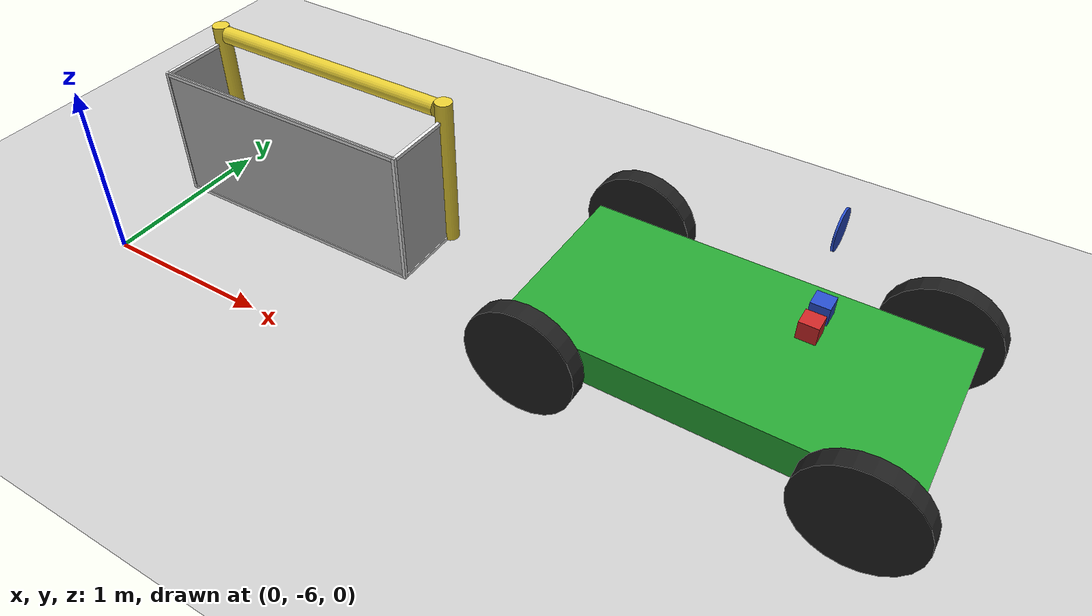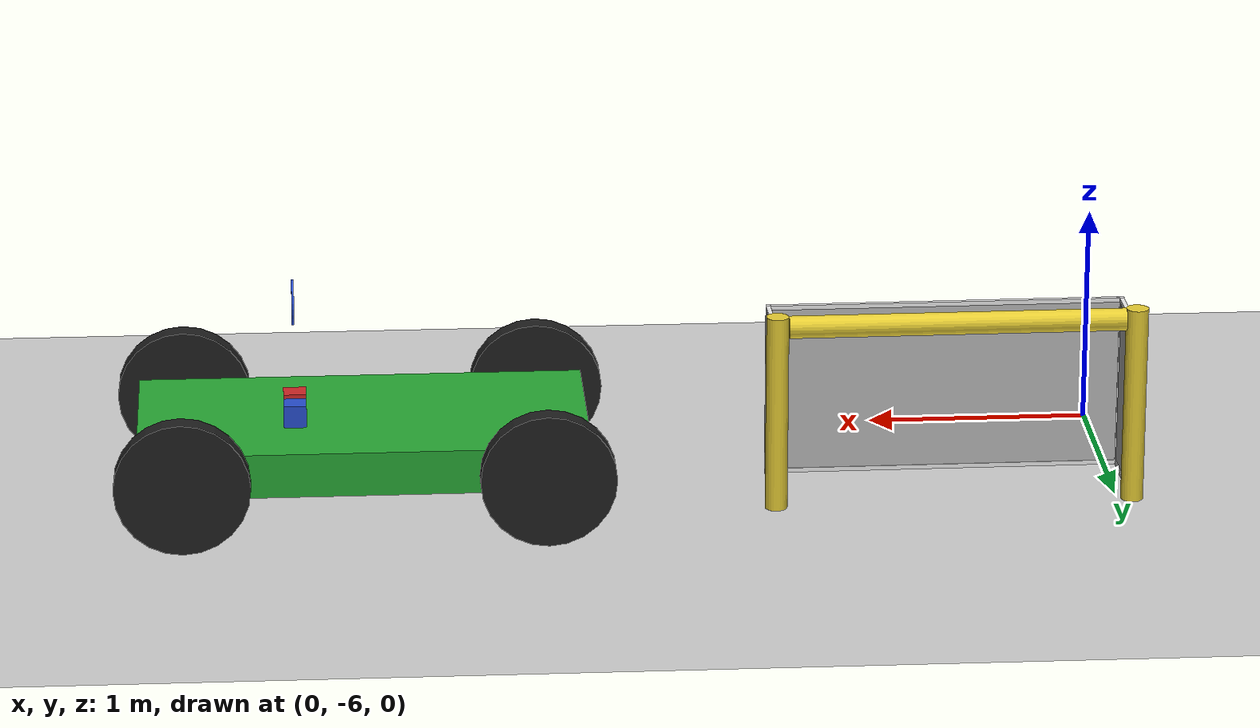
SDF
<sdf version="1.6">
 <world name="default">
  <model name="ground_plane">
   <static>1</static>
   <link name="link">
    <collision name="collision">
     <geometry><plane><normal>0 0 1</normal><size>100 100</size></plane></geometry>
     <surface>
      <contact><collide_bitmask>65535</collide_bitmask></contact>
      <friction><ode><mu>100</mu><mu2>50</mu2></ode></friction>
     </surface>
    </collision>
    <visual name="visual">
     <cast_shadows>0</cast_shadows>
     <geometry><plane><normal>0 0 1</normal><size>100 100</size></plane></geometry>
     <material>
      <script><uri>file://media/materials/scripts/gazebo.material</uri><name>Gazebo/Grey</name></script>
     </material>
    </visual>
   </link>
  </model>
  <model name="RoboCup 2014 SPL Goal">
   <static>1</static>
   <link name="left_post">
    <pose>0 0.8 0.45 0 -0 0</pose>
    <collision name="collision">
     <geometry><cylinder><radius>0.05</radius><length>0.9</length></cylinder></geometry>
    </collision>
    <visual name="visual">
     <geometry><cylinder><radius>0.05</radius><length>0.9</length></cylinder></geometry>
     <material>
      <script><uri>file://media/materials/scripts/gazebo.material</uri><name>Gazebo/ZincYellow</name></script>
     </material>
    </visual>
   </link>
   <link name="left_support_horiz_lower">
    <pose>0.24 0.8 0.01 0 -0 0</pose>
    <collision name="collision"><geometry><box><size>0.38 0.02 0.02</size></box></geometry></collision>
    <visual name="visual">
     <geometry><box><size>0.38 0.02 0.02</size></box></geometry>
     <material>
      <script><uri>file://media/materials/scripts/gazebo.material</uri><name>Gazebo/White</name></script>
     </material>
    </visual>
   </link>
   <link name="left_support_horiz_upper">
    <pose>0.24 0.8 0.79 0 -0 0</pose>
    <collision name="collision"><geometry><box><size>0.38 0.02 0.02</size></box></geometry></collision>
    <visual name="visual">
     <geometry><box><size>0.38 0.02 0.02</size></box></geometry>
     <material>
      <script><uri>file://media/materials/scripts/gazebo.material</uri><name>Gazebo/White</name></script>
     </material>
    </visual>
   </link>
   <link name="left_support_vertical">
    <pose>0.44 0.8 0.4 3.14159 1.57079 3.14159</pose>
    <collision name="collision"><geometry><box><size>0.8 0.02 0.02</size></box></geometry></collision>
    <visual name="visual">
     <geometry><box><size>0.8 0.02 0.02</size></box></geometry>
     <material>
      <script><uri>file://media/materials/scripts/gazebo.material</uri><name>Gazebo/White</name></script>
     </material>
    </visual>
   </link>
   <link name="right_support_horiz_lower">
    <pose>0.24 -0.8 0.01 0 -0 0</pose>
    <collision name="collision"><geometry><box><size>0.38 0.02 0.02</size></box></geometry></collision>
    <visual name="visual">
     <geometry><box><size>0.38 0.02 0.02</size></box></geometry>
     <material>
      <script><uri>file://media/materials/scripts/gazebo.material</uri><name>Gazebo/White</name></script>
     </material>
    </visual>
   </link>
   <link name="right_support_horiz_upper">
    <pose>0.24 -0.8 0.79 0 -0 0</pose>
    <collision name="collision"><geometry><box><size>0.38 0.02 0.02</size></box></geometry></collision>
    <visual name="visual">
     <geometry><box><size>0.38 0.02 0.02</size></box></geometry>
     <material>
      <script><uri>file://media/materials/scripts/gazebo.material</uri><name>Gazebo/White</name></script>
     </material>
    </visual>
   </link>
   <link name="right_support_vertical">
    <pose>0.44 -0.8 0.4 3.14159 1.57079 3.14159</pose>
    <collision name="collision"><geometry><box><size>0.8 0.02 0.02</size></box></geometry></collision>
    <visual name="visual">
     <geometry><box><size>0.8 0.02 0.02</size></box></geometry>
     <material>
      <script><uri>file://media/materials/scripts/gazebo.material</uri><name>Gazebo/White</name></script>
     </material>
    </visual>
   </link>
   <link name="center_support_horiz_lower">
    <pose>0.44 0 0.01 3.14159 1.57079 3.14159</pose>
    <collision name="collision"><geometry><box><size>0.02 1.58 0.02</size></box></geometry></collision>
    <visual name="visual">
     <geometry><box><size>0.02 1.58 0.02</size></box></geometry>
     <material>
      <script><uri>file://media/materials/scripts/gazebo.material</uri><name>Gazebo/White</name></script>
     </material>
    </visual>
   </link>
   <link name="center_support_horiz_upper">
    <pose>0.44 0 0.79 3.14159 1.57079 3.14159</pose>
    <collision name="collision"><geometry><box><size>0.02 1.58 0.02</size></box></geometry></collision>
    <visual name="visual">
     <geometry><box><size>0.02 1.58 0.02</size></box></geometry>
     <material>
      <script><uri>file://media/materials/scripts/gazebo.material</uri><name>Gazebo/White</name></script>
     </material>
    </visual>
   </link>
   <link name="right_post">
    <pose>0 -0.8 0.45 0 -0 0</pose>
    <collision name="collision">
     <geometry><cylinder><radius>0.05</radius><length>0.9</length></cylinder></geometry>
    </collision>
    <visual name="visual">
     <geometry><cylinder><radius>0.05</radius><length>0.9</length></cylinder></geometry>
     <material>
      <script><uri>file://media/materials/scripts/gazebo.material</uri><name>Gazebo/ZincYellow</name></script>
     </material>
    </visual>
   </link>
   <link name="crossbar">
    <pose>0 0 0.85 1.57 1.57 0</pose>
    <collision name="collision">
     <geometry><cylinder><radius>0.05</radius><length>1.5</length></cylinder></geometry>
    </collision>
    <visual name="visual">
     <geometry><cylinder><radius>0.05</radius><length>1.5</length></cylinder></geometry>
     <material>
      <script><uri>file://media/materials/scripts/gazebo.material</uri><name>Gazebo/ZincYellow</name></script>
     </material>
    </visual>
   </link>
   <link name="center_net">
    <pose>0.44 0 0.4 0 -0 0</pose>
    <collision name="collision"><geometry><box><size>0.01 1.6 0.8</size></box></geometry></collision>
    <visual name="visual">
     <geometry><box><size>0.01 1.6 0.8</size></box></geometry>
     <material>
      <script>
       <uri>model://robocup09_spl_field/materials/scripts/</uri>
       <uri>model://robocup09_spl_field/materials/textures/</uri>
       <name>RoboCup/Net</name>
      </script>
     </material>
    </visual>
   </link>
   <link name="left_net">
    <pose>0.24 0.8 0.4 0 -0 0</pose>
    <collision name="collision"><geometry><box><size>0.38 0.01 0.76</size></box></geometry></collision>
    <visual name="visual">
     <geometry><box><size>0.38 0.01 0.76</size></box></geometry>
     <material>
      <script>
       <uri>model://robocup09_spl_field/materials/scripts/</uri>
       <uri>model://robocup09_spl_field/materials/textures/</uri>
       <name>RoboCup/Net</name>
      </script>
     </material>
    </visual>
   </link>
   <link name="right_net">
    <pose>0.24 -0.8 0.4 0 -0 0</pose>
    <collision name="collision"><geometry><box><size>0.38 0.01 0.76</size></box></geometry></collision>
    <visual name="visual">
     <geometry><box><size>0.38 0.01 0.76</size></box></geometry>
     <material>
      <script>
       <uri>model://robocup09_spl_field/materials/scripts/</uri>
       <uri>model://robocup09_spl_field/materials/textures/</uri>
       <name>RoboCup/Net</name>
      </script>
     </material>
    </visual>
   </link>
   <pose>0.733711 -4.93419 0 0 0 -1.56359</pose>
  </model>
  <model name="car">
   <link name="chassis">
    <pose>0 0 0.3 0 -0 0</pose>
    <collision name="collision"><geometry><box><size>2 1 0.2</size></box></geometry></collision>
    <visual name="visual">
     <geometry><box><size>2 1 0.2</size></box></geometry>
     <material>
      <script><uri>file://media/materials/scripts/gazebo.material</uri><name>Gazebo/Green</name></script>
     </material>
    </visual>
    <inertial>
     <inertia><ixx>1</ixx><ixy>0</ixy><ixz>0</ixz><iyy>1</iyy><iyz>0</iyz><izz>1</izz></inertia>
     <mass>1</mass>
    </inertial>
   </link>
   <link name="front_left_wheel">
    <pose>0.8 0.6 0.3 -0 1.5707 1.5707</pose>
    <collision name="collision">
     <geometry><cylinder><radius>0.3</radius><length>0.1</length></cylinder></geometry>
    </collision>
    <visual name="visual">
     <geometry><cylinder><radius>0.3</radius><length>0.1</length></cylinder></geometry>
     <material>
      <script><uri>file://media/materials/scripts/gazebo.material</uri><name>Gazebo/Black</name></script>
     </material>
    </visual>
    <inertial>
     <inertia><ixx>1</ixx><ixy>0</ixy><ixz>0</ixz><iyy>1</iyy><iyz>0</iyz><izz>1</izz></inertia>
     <mass>1</mass>
    </inertial>
   </link>
   <link name="front_right_wheel">
    <pose>0.8 -0.6 0.3 -0 1.5707 1.5707</pose>
    <collision name="collision">
     <geometry><cylinder><radius>0.3</radius><length>0.1</length></cylinder></geometry>
    </collision>
    <visual name="visual">
     <geometry><cylinder><radius>0.3</radius><length>0.1</length></cylinder></geometry>
     <material>
      <script><uri>file://media/materials/scripts/gazebo.material</uri><name>Gazebo/Black</name></script>
     </material>
    </visual>
    <inertial>
     <inertia><ixx>1</ixx><ixy>0</ixy><ixz>0</ixz><iyy>1</iyy><iyz>0</iyz><izz>1</izz></inertia>
     <mass>1</mass>
    </inertial>
   </link>
   <link name="back_right_wheel">
    <pose>-0.8 -0.6 0.3 -0 1.5707 1.5707</pose>
    <collision name="collision">
     <geometry><cylinder><radius>0.3</radius><length>0.1</length></cylinder></geometry>
    </collision>
    <visual name="visual">
     <geometry><cylinder><radius>0.3</radius><length>0.1</length></cylinder></geometry>
     <material>
      <script><uri>file://media/materials/scripts/gazebo.material</uri><name>Gazebo/Black</name></script>
     </material>
    </visual>
    <inertial>
     <inertia><ixx>1</ixx><ixy>0</ixy><ixz>0</ixz><iyy>1</iyy><iyz>0</iyz><izz>1</izz></inertia>
     <mass>1</mass>
    </inertial>
   </link>
   <link name="back_left_wheel">
    <pose>-0.8 0.6 0.3 -0 1.5707 1.5707</pose>
    <collision name="collision">
     <geometry><cylinder><radius>0.3</radius><length>0.1</length></cylinder></geometry>
    </collision>
    <visual name="visual">
     <geometry><cylinder><radius>0.3</radius><length>0.1</length></cylinder></geometry>
     <material>
      <script><uri>file://media/materials/scripts/gazebo.material</uri><name>Gazebo/Black</name></script>
     </material>
    </visual>
    <inertial>
     <inertia><ixx>1</ixx><ixy>0</ixy><ixz>0</ixz><iyy>1</iyy><iyz>0</iyz><izz>1</izz></inertia>
     <mass>1</mass>
    </inertial>
   </link>
   <link name="gas_pedal">
    <pose>0.3 0.1 0.5 0 -0 0</pose>
    <collision name="collision"><geometry><box><size>0.1 0.1 0.1</size></box></geometry></collision>
    <visual name="visual">
     <geometry><box><size>0.1 0.1 0.1</size></box></geometry>
     <material>
      <script><uri>file://media/materials/scripts/gazebo.material</uri><name>Gazebo/Red</name></script>
     </material>
    </visual>
    <inertial>
     <inertia><ixx>1</ixx><ixy>0</ixy><ixz>0</ixz><iyy>1</iyy><iyz>0</iyz><izz>1</izz></inertia>
     <mass>1</mass>
    </inertial>
   </link>
   <link name="brake_pedal">
    <pose>0.3 0.25 0.5 0 -0 0</pose>
    <collision name="collision"><geometry><box><size>0.1 0.1 0.1</size></box></geometry></collision>
    <visual name="visual">
     <geometry><box><size>0.1 0.1 0.1</size></box></geometry>
     <material>
      <script><uri>file://media/materials/scripts/gazebo.material</uri><name>Gazebo/Blue</name></script>
     </material>
    </visual>
    <inertial>
     <inertia><ixx>1</ixx><ixy>0</ixy><ixz>0</ixz><iyy>1</iyy><iyz>0</iyz><izz>1</izz></inertia>
     <mass>1</mass>
    </inertial>
   </link>
   <link name="steering_wheel">
    <pose>0.3 0.2 1 0 1.5707 0</pose>
    <collision name="collision">
     <geometry><cylinder><radius>0.1</radius><length>0.01</length></cylinder></geometry>
    </collision>
    <visual name="visual">
     <geometry><cylinder><radius>0.1</radius><length>0.01</length></cylinder></geometry>
     <material>
      <script><uri>file://media/materials/scripts/gazebo.material</uri><name>Gazebo/Blue</name></script>
     </material>
    </visual>
    <inertial>
     <inertia><ixx>1</ixx><ixy>0</ixy><ixz>0</ixz><iyy>1</iyy><iyz>0</iyz><izz>1</izz></inertia>
     <mass>1</mass>
    </inertial>
   </link>
   <joint name="gas_joint" type="prismatic">
    <parent>chassis</parent>
    <child>gas_pedal</child>
    <axis>
     <xyz>1 0 0</xyz>
     <limit><lower>0</lower><upper>0.2</upper></limit>
     <use_parent_model_frame>1</use_parent_model_frame>
     <dynamics><spring_reference>0</spring_reference><spring_stiffness>0</spring_stiffness></dynamics>
    </axis>
   </joint>
   <joint name="brake_joint" type="prismatic">
    <parent>chassis</parent>
    <child>brake_pedal</child>
    <axis>
     <xyz>1 0 0</xyz>
     <limit><lower>0</lower><upper>0.2</upper></limit>
     <use_parent_model_frame>1</use_parent_model_frame>
     <dynamics><spring_reference>0</spring_reference><spring_stiffness>0</spring_stiffness></dynamics>
    </axis>
   </joint>
   <joint name="steering_joint" type="revolute">
    <parent>chassis</parent>
    <child>steering_wheel</child>
    <axis>
     <xyz>1 0 0</xyz>
     <limit><lower>-7.853</lower><upper>7.853</upper></limit>
     <use_parent_model_frame>1</use_parent_model_frame>
     <dynamics><spring_reference>0</spring_reference><spring_stiffness>0</spring_stiffness></dynamics>
    </axis>
   </joint>
   <joint name="front_left_joint" type="revolute2">
    <parent>chassis</parent>
    <child>front_left_wheel</child>
    <axis>
     <xyz>0 0 1</xyz>
     <limit><lower>8.67795e-06</lower><upper>8.67795e-06</upper></limit>
     <use_parent_model_frame>1</use_parent_model_frame>
     <dynamics><spring_reference>0</spring_reference><spring_stiffness>0</spring_stiffness></dynamics>
    </axis>
    <axis2>
     <xyz>0 1 0</xyz>
     <use_parent_model_frame>1</use_parent_model_frame>
     <dynamics><spring_reference>0</spring_reference><spring_stiffness>0</spring_stiffness></dynamics>
    </axis2>
    <physics><ode><limit><cfm>0</cfm><erp>0.9</erp></limit></ode></physics>
   </joint>
   <joint name="front_right_joint" type="revolute2">
    <parent>chassis</parent>
    <child>front_right_wheel</child>
    <axis>
     <xyz>0 0 1</xyz>
     <limit><lower>8.67795e-06</lower><upper>8.67795e-06</upper></limit>
     <use_parent_model_frame>1</use_parent_model_frame>
     <dynamics><spring_reference>0</spring_reference><spring_stiffness>0</spring_stiffness></dynamics>
    </axis>
    <axis2>
     <xyz>0 1 0</xyz>
     <use_parent_model_frame>1</use_parent_model_frame>
     <dynamics><spring_reference>0</spring_reference><spring_stiffness>0</spring_stiffness></dynamics>
    </axis2>
    <physics><ode><limit><cfm>0</cfm><erp>0.9</erp></limit></ode></physics>
   </joint>
   <joint name="back_right_joint" type="revolute2">
    <parent>chassis</parent>
    <child>back_right_wheel</child>
    <axis>
     <xyz>0 0 1</xyz>
     <limit><lower>0</lower><upper>0</upper></limit>
     <use_parent_model_frame>1</use_parent_model_frame>
     <dynamics><spring_reference>0</spring_reference><spring_stiffness>0</spring_stiffness></dynamics>
    </axis>
    <axis2>
     <xyz>0 1 0</xyz>
     <use_parent_model_frame>1</use_parent_model_frame>
     <dynamics><spring_reference>0</spring_reference><spring_stiffness>0</spring_stiffness></dynamics>
    </axis2>
    <physics><ode><limit><cfm>0</cfm><erp>0.9</erp></limit></ode></physics>
   </joint>
   <joint name="back_left_joint" type="revolute2">
    <parent>chassis</parent>
    <child>back_left_wheel</child>
    <axis>
     <xyz>0 0 1</xyz>
     <limit><lower>0</lower><upper>0</upper></limit>
     <use_parent_model_frame>1</use_parent_model_frame>
     <dynamics><spring_reference>0</spring_reference><spring_stiffness>0</spring_stiffness></dynamics>
    </axis>
    <axis2>
     <xyz>0 1 0</xyz>
     <use_parent_model_frame>1</use_parent_model_frame>
     <dynamics><spring_reference>0</spring_reference><spring_stiffness>0</spring_stiffness></dynamics>
    </axis2>
    <physics><ode><limit><cfm>0</cfm><erp>0.9</erp></limit></ode></physics>
   </joint>
   <plugin name="vehicle" filename="libVehiclePlugin.so">
    <front_left>front_left_joint</front_left>
    <front_right>front_right_joint</front_right>
    <back_left>back_left_joint</back_left>
    <back_right>back_right_joint</back_right>
    <gas>gas_joint</gas>
    <brake>brake_joint</brake>
    <steering>steering_joint</steering>
    <front_power>10</front_power>
    <rear_power>10</rear_power>
    <tire_angle_range>0.5</tire_angle_range>
    <max_speed>10</max_speed>
    <aero_load>0.1</aero_load>
   </plugin>
   <pose>3.36544 -5.17998 -0.002616 -0.000273 0.000907 0.000288</pose>
  </model>
 </world>
</sdf>
